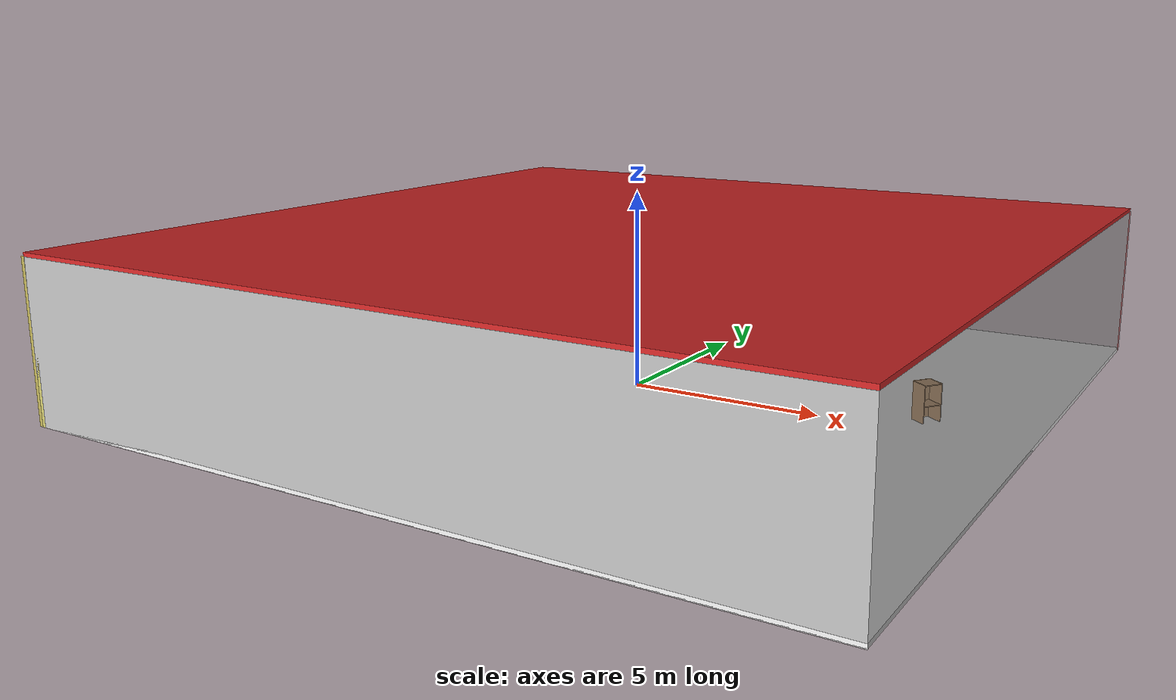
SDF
<sdf version="1.4">
 <world name="default">
  <physics type="ode">
   <max_step_size>0.001</max_step_size>
   <real_time_factor>1</real_time_factor>
   <real_time_update_rate>1000</real_time_update_rate>
   <gravity>0 0 -9.8</gravity>
  </physics>
  <scene><ambient>0.4 0.4 0.4 1</ambient><background>0.7 0.7 0.7 1</background><shadows>1</shadows></scene>
  <model name="Surrounding">
   <static>1</static>
   <link name="Ceiling">
    <collision name="Ceiling_Collision"><geometry><box><size>20 20 0.1</size></box></geometry></collision>
    <visual name="Ceiling_Visual">
     <geometry><box><size>20 20 0.1</size></box></geometry>
     <material>
      <script><uri>file://media/materials/scripts/gazebo.material</uri><name>Gazebo/RedGlow</name></script>
     </material>
    </visual>
    <pose>0 0 4.05 0 0 0</pose>
   </link>
   <link name="Wall_South">
    <collision name="Wall_South_Collision">
     <geometry><box><size>20 0 4</size></box></geometry>
     <pose>0 0 2 0 -0 0</pose>
    </collision>
    <visual name="Wall_South_Visual">
     <pose>0 0 2 0 -0 0</pose>
     <geometry><box><size>20 0 4</size></box></geometry>
     <material>
      <script><uri>file://media/materials/scripts/gazebo.material</uri><name>Gazebo/LightOn</name></script>
     </material>
    </visual>
    <velocity_decay><linear>0</linear><angular>0</angular></velocity_decay>
    <pose>0 -10 0 0 -0 0</pose>
   </link>
   <link name="Wall_East">
    <collision name="Wall_21_Collision">
     <geometry><box><size>20 0 4</size></box></geometry>
     <pose>0 0 2 0 -0 0</pose>
    </collision>
    <visual name="Wall_21_Visual">
     <pose>0 0 2 0 -0 0</pose>
     <geometry><box><size>20 0 4</size></box></geometry>
     <material>
      <script><uri>file://media/materials/scripts/gazebo.material</uri><name>Gazebo/GreyTransparent</name></script>
     </material>
    </visual>
    <velocity_decay><linear>0</linear><angular>0</angular></velocity_decay>
    <pose>10 0 0 0 -0 1.5708</pose>
   </link>
   <link name="Wall_North">
    <collision name="Wall_22_Collision">
     <geometry><box><size>20 0.2 4</size></box></geometry>
     <pose>0 0 2 0 -0 0</pose>
    </collision>
    <visual name="Wall_22_Visual">
     <pose>0 0 2 0 -0 0</pose>
     <geometry><box><size>20 0.2 4</size></box></geometry>
     <material>
      <script><uri>file://media/materials/scripts/gazebo.material</uri><name>Gazebo/RedTransparent</name></script>
     </material>
    </visual>
    <velocity_decay><linear>0</linear><angular>0</angular></velocity_decay>
    <pose>0 10 0 0 -0 0</pose>
   </link>
   <link name="Wall_West">
    <collision name="Wall_23_Collision">
     <geometry><box><size>20 0.2 4</size></box></geometry>
     <pose>0 0 2 0 -0 0</pose>
    </collision>
    <visual name="Wall_23_Visual">
     <pose>0 0 2 0 -0 0</pose>
     <geometry><box><size>20 0.2 4</size></box></geometry>
     <material>
      <script>
       <uri>file://media/materials/scripts/gazebo.material</uri>
       <name>Gazebo/YellowTransparent</name>
      </script>
     </material>
    </visual>
    <velocity_decay><linear>0</linear><angular>0</angular></velocity_decay>
    <pose>-10 0 0 0 0 -1.5708</pose>
   </link>
   <link name="Ground_link">
    <collision name="collision">
     <pose>0 0 .05 0 -0 0</pose>
     <geometry><box><size>20 20 0.1</size></box></geometry>
    </collision>
    <visual name="visual">
     <pose>0 0 .05 0 -0 0</pose>
     <geometry><box><size>20 20 0.1</size></box></geometry>
     <material>
      <script><uri>file://media/materials/scripts/gazebo.material</uri><name>Gazebo/White</name></script>
     </material>
    </visual>
   </link>
   <static>1</static>
  </model>
  <spherical_coordinates>
   <surface_model>EARTH_WGS84</surface_model>
   <latitude_deg>0</latitude_deg>
   <longitude_deg>0</longitude_deg>
   <elevation>0</elevation>
   <heading_deg>0</heading_deg>
  </spherical_coordinates>
  <light name="lightball_0" type="diffuse">
   <diffuse>0.8 0.8 0.8 1</diffuse>
   <specular>0.2 0.2 0.2 1</specular>
   <attenuation>
    <range>100</range>
    <constant>0.7</constant>
    <linear>0.01</linear>
    <quadratic>0.001</quadratic>
   </attenuation>
   <direction>-0.5 0.1 -0.9</direction>
   <pose>-6.9219901247 -1.0176859074 2.0475834895 0 0 0</pose>
  </light>
  <light name="lightball_1" type="diffuse">
   <diffuse>0.8 0.8 0.8 1</diffuse>
   <specular>0.2 0.2 0.2 1</specular>
   <attenuation>
    <range>100</range>
    <constant>0.7</constant>
    <linear>0.01</linear>
    <quadratic>0.001</quadratic>
   </attenuation>
   <direction>-0.5 0.1 -0.9</direction>
   <pose>5.12384408195 -6.71334094923 0.981302999007 0 0 0</pose>
  </light>
  <light name="lightball_2" type="diffuse">
   <diffuse>0.8 0.8 0.8 1</diffuse>
   <specular>0.2 0.2 0.2 1</specular>
   <attenuation>
    <range>100</range>
    <constant>0.7</constant>
    <linear>0.01</linear>
    <quadratic>0.001</quadratic>
   </attenuation>
   <direction>-0.5 0.1 -0.9</direction>
   <pose>8.69430212344 -5.83334695616 2.18246024287 0 0 0</pose>
  </light>
  <light name="lightball_3" type="diffuse">
   <diffuse>0.8 0.8 0.8 1</diffuse>
   <specular>0.2 0.2 0.2 1</specular>
   <attenuation>
    <range>100</range>
    <constant>0.7</constant>
    <linear>0.01</linear>
    <quadratic>0.001</quadratic>
   </attenuation>
   <direction>-0.5 0.1 -0.9</direction>
   <pose>4.49680541966 9.76303651911 3.49619910392 0 0 0</pose>
  </light>
  <light name="lightball_4" type="diffuse">
   <diffuse>0.8 0.8 0.8 1</diffuse>
   <specular>0.2 0.2 0.2 1</specular>
   <attenuation>
    <range>100</range>
    <constant>0.7</constant>
    <linear>0.01</linear>
    <quadratic>0.001</quadratic>
   </attenuation>
   <direction>-0.5 0.1 -0.9</direction>
   <pose>3.19442264798 -3.04285388894 3.28518334955 0 0 0</pose>
  </light>
  <light name="lightball_5" type="diffuse">
   <diffuse>0.8 0.8 0.8 1</diffuse>
   <specular>0.2 0.2 0.2 1</specular>
   <attenuation>
    <range>100</range>
    <constant>0.7</constant>
    <linear>0.01</linear>
    <quadratic>0.001</quadratic>
   </attenuation>
   <direction>-0.5 0.1 -0.9</direction>
   <pose>-2.12088009406 -3.94111822824 2.31964014629 0 0 0</pose>
  </light>
  <light name="lightball_6" type="diffuse">
   <diffuse>0.8 0.8 0.8 1</diffuse>
   <specular>0.2 0.2 0.2 1</specular>
   <attenuation>
    <range>100</range>
    <constant>0.7</constant>
    <linear>0.01</linear>
    <quadratic>0.001</quadratic>
   </attenuation>
   <direction>-0.5 0.1 -0.9</direction>
   <pose>-0.63312288885 5.24958044617 2.31032881172 0 0 0</pose>
  </light>
  <light name="lightball_7" type="diffuse">
   <diffuse>0.8 0.8 0.8 1</diffuse>
   <specular>0.2 0.2 0.2 1</specular>
   <attenuation>
    <range>100</range>
    <constant>0.7</constant>
    <linear>0.01</linear>
    <quadratic>0.001</quadratic>
   </attenuation>
   <direction>-0.5 0.1 -0.9</direction>
   <pose>-9.01895331078 -2.35110000547 3.43708945331 0 0 0</pose>
  </light>
  <light name="lightball_8" type="diffuse">
   <diffuse>0.8 0.8 0.8 1</diffuse>
   <specular>0.2 0.2 0.2 1</specular>
   <attenuation>
    <range>100</range>
    <constant>0.7</constant>
    <linear>0.01</linear>
    <quadratic>0.001</quadratic>
   </attenuation>
   <direction>-0.5 0.1 -0.9</direction>
   <pose>-8.61907240354 7.05717682444 3.74052269907 0 0 0</pose>
  </light>
  <light name="lightball_9" type="diffuse">
   <diffuse>0.8 0.8 0.8 1</diffuse>
   <specular>0.2 0.2 0.2 1</specular>
   <attenuation>
    <range>100</range>
    <constant>0.7</constant>
    <linear>0.01</linear>
    <quadratic>0.001</quadratic>
   </attenuation>
   <direction>-0.5 0.1 -0.9</direction>
   <pose>9.79983985995 -1.34171545973 1.33884310361 0 0 0</pose>
  </light>
  <include><uri>model://table</uri><pose>-4.15874544757 -1.63410880923 0 0 0 0.0777421468115</pose></include>
  <include><uri>model://cabinet</uri><pose>7.40052188861 0.715456903001 0 0 0 2.51130055601</pose></include>
 </world>
</sdf>

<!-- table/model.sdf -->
<sdf version="1.5">
  <model name="table">
    <static>true</static>
    <link name="link">
      <collision name="surface">
        <pose>0 0 1.0 0 0 0</pose>
        <geometry>
          <box>
            <size>1.5 0.8 0.03</size>
          </box>
        </geometry>
        <surface>
          <friction>
            <ode>
              <mu>0.6</mu>
              <mu2>0.6</mu2>
            </ode>
          </friction>
        </surface>
      </collision>
      <visual name="visual1">
        <pose>0 0 1.0 0 0 0</pose>
        <geometry>
          <box>
            <size>1.5 0.8 0.03</size>
          </box>
        </geometry>
        <material>
          <script>
            <uri>model://media/materials/scripts/gazebo.material</uri>
            <name>Gazebo/Wood</name>
          </script>
        </material>
      </visual>
      <collision name="front_left_leg">
        <pose>0.68 0.38 0.5 0 0 0</pose>
        <geometry>
          <cylinder>
            <radius>0.02</radius>
            <length>1.0</length>
          </cylinder>
        </geometry>
      </collision>
      <visual name="front_left_leg">
        <pose>0.68 0.38 0.5 0 0 0</pose>
        <geometry>
          <cylinder>
            <radius>0.02</radius>
            <length>1.0</length>
          </cylinder>
        </geometry>
        <material>
          <script>
            <uri>model://media/materials/scripts/gazebo.material</uri>
            <name>Gazebo/Grey</name>
          </script>
        </material>
      </visual>
      <collision name="front_right_leg">
        <pose>0.68 -0.38 0.5 0 0 0</pose>
        <geometry>
          <cylinder>
            <radius>0.02</radius>
            <length>1.0</length>
          </cylinder>
        </geometry>
      </collision>
      <visual name="front_right_leg">
        <pose>0.68 -0.38 0.5 0 0 0</pose>
        <geometry>
          <cylinder>
            <radius>0.02</radius>
            <length>1.0</length>
          </cylinder>
        </geometry>
        <material>
          <script>
            <uri>model://media/materials/scripts/gazebo.material</uri>
            <name>Gazebo/Grey</name>
          </script>
        </material>
      </visual>
      <collision name="back_right_leg">
        <pose>-0.68 -0.38 0.5 0 0 0</pose>
        <geometry>
          <cylinder>
            <radius>0.02</radius>
            <length>1.0</length>
          </cylinder>
        </geometry>
      </collision>
      <visual name="back_right_leg">
        <pose>-0.68 -0.38 0.5 0 0 0</pose>
        <geometry>
          <cylinder>
            <radius>0.02</radius>
            <length>1.0</length>
          </cylinder>
        </geometry>
        <material>
          <script>
            <uri>model://media/materials/scripts/gazebo.material</uri>
            <name>Gazebo/Grey</name>
          </script>
        </material>
      </visual>
      <collision name="back_left_leg">
        <pose>-0.68 0.38 0.5 0 0 0</pose>
        <geometry>
          <cylinder>
            <radius>0.02</radius>
            <length>1.0</length>
          </cylinder>
        </geometry>
      </collision>
      <visual name="back_left_leg">
        <pose>-0.68 0.38 0.5 0 0 0</pose>
        <geometry>
          <cylinder>
            <radius>0.02</radius>
            <length>1.0</length>
          </cylinder>
        </geometry>
        <material>
          <script>
            <uri>model://media/materials/scripts/gazebo.material</uri>
            <name>Gazebo/Grey</name>
          </script>
        </material>
      </visual>
    </link>
  </model>
</sdf>

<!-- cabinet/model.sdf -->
<sdf version="1.5">
  <model name="cabinet">
    <static>true</static>
    <link name="cabinet_bottom_plate">
      <inertial>
        <pose>0 0 -1 0 0 0</pose>
        <inertia>
          <ixx>2.050000</ixx>
          <ixy>0</ixy>
          <ixz>0</ixz>
          <iyy>2.050000</iyy>
          <iyz>0</iyz>
          <izz>2.050000</izz>
        </inertia>
        <mass>25.000000</mass>
      </inertial>
      <collision name="cabinet_bottom_plate_geom">
        <pose>0 0 0.010000 0 0 0</pose>
        <geometry>
          <box>
            <size>0.450000 0.450000 0.020000</size>
          </box>
        </geometry>
      </collision>
      <visual name="cabinet_bottom_plate_geom_visual">
        <pose>0 0 0.010000 0 0 0</pose>
        <geometry>
          <box>
            <size>0.450000 0.450000 0.020000</size>
          </box>
        </geometry>
        <material>
          <script>
            <uri>model://media/materials/scripts/gazebo.material</uri>
            <name>Gazebo/Wood</name>
          </script>
        </material>
      </visual>
      <collision name="cabinet_bottom_plate_geom_cabinet_back_plate">
        <pose>0.235000 0 0.510000 0 0 0</pose>
        <geometry>
          <box>
            <size>0.020000 0.450000 1.020000</size>
          </box>
        </geometry>
      </collision>
      <visual name="cabinet_bottom_plate_geom_cabinet_back_plate_visual">
        <pose>0.235000 0 0.510000 0 0 0</pose>
        <geometry>
          <box>
            <size>0.020000 0.450000 1.020000</size>
          </box>
        </geometry>
        <material>
          <script>
            <uri>model://media/materials/scripts/gazebo.material</uri>
            <name>Gazebo/Wood</name>
          </script>
        </material>
      </visual>
      <collision name="cabinet_bottom_plate_geom_cabinet_left_plate">
        <pose>0 0.235000 0.510000 0 0 0</pose>
        <geometry>
          <box>
            <size>0.450000 0.020000 1.020000</size>
          </box>
        </geometry>
      </collision>
      <visual name="cabinet_bottom_plate_geom_cabinet_left_plate_visual">
        <pose>0 0.235000 0.510000 0 0 0</pose>
        <geometry>
          <box>
            <size>0.450000 0.020000 1.020000</size>
          </box>
        </geometry>
        <material>
          <script>
            <uri>model://media/materials/scripts/gazebo.material</uri>
            <name>Gazebo/Wood</name>
          </script>
        </material>
      </visual>
      <collision name="cabinet_bottom_plate_geom_cabinet_middle_plate">
        <pose>0 0 0.510000 0 0 0</pose>
        <geometry>
          <box>
            <size>0.450000 0.450000 0.020000</size>
          </box>
        </geometry>
      </collision>
      <visual name="cabinet_bottom_plate_geom_cabinet_middle_plate_visual">
        <pose>0 0 0.510000 0 0 0</pose>
        <geometry>
          <box>
            <size>0.450000 0.450000 0.020000</size>
          </box>
        </geometry>
        <material>
          <script>
            <uri>model://media/materials/scripts/gazebo.material</uri>
            <name>Gazebo/Wood</name>
          </script>
        </material>
      </visual>
      <collision name="cabinet_bottom_plate_geom_cabinet_right_plate">
        <pose>0 -0.235000 0.510000 0 0 0</pose>
        <geometry>
          <box>
            <size>0.450000 0.020000 1.020000</size>
          </box>
        </geometry>
      </collision>
      <visual name="cabinet_bottom_plate_geom_cabinet_right_plate_visual">
        <pose>0 -0.235000 0.510000 0 0 0</pose>
        <geometry>
          <box>
            <size>0.450000 0.020000 1.020000</size>
          </box>
        </geometry>
        <material>
          <script>
            <uri>model://media/materials/scripts/gazebo.material</uri>
            <name>Gazebo/Wood</name>
          </script>
        </material>
      </visual>
      <collision name="cabinet_bottom_plate_geom_cabinet_top_plate">
        <pose>0 0 1.010000 0 0 0</pose>
        <geometry>
          <box>
            <size>0.450000 0.450000 0.020000</size>
          </box>
        </geometry>
      </collision>
      <visual name="cabinet_bottom_plate_geom_cabinet_top_plate_visual">
        <pose>0 0 1.010000 0 0 0</pose>
        <geometry>
          <box>
            <size>0.450000 0.450000 0.020000</size>
          </box>
        </geometry>
        <material>
          <script>
            <uri>model://media/materials/scripts/gazebo.material</uri>
            <name>Gazebo/Wood</name>
          </script>
        </material>
      </visual>
    </link>
  </model>
</sdf>
